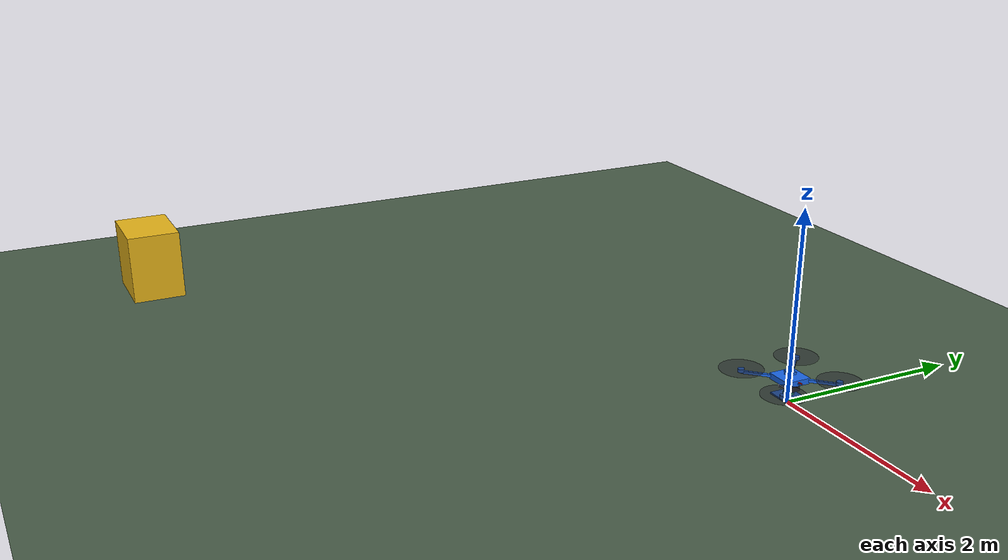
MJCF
<mujoco model="tar_step0_empty">
  <compiler angle="radian" autolimits="true" inertiafromgeom="true" />
  <option timestep="0.002" gravity="0 0 -9.81" integrator="RK4" />
  <statistic center="0 0 2" extent="15" />
  <visual>
    <global offwidth="1280" offheight="960" />
    <headlight ambient="0.4 0.4 0.4" />
  </visual>
  <asset>
    <texture name="sky" type="skybox" builtin="gradient" rgb1="0.35 0.55 0.8" rgb2="0.85 0.9 0.95" width="512" height="512" />
    <texture name="grid" type="2d" builtin="checker" rgb1="0.24 0.32 0.24" rgb2="0.32 0.4 0.32" width="256" height="256" />
    <material name="ground" texture="grid" texrepeat="30 30" />
  </asset>
  <worldbody>
    <light pos="0 0 15" dir="-0.2 -0.3 -1" directional="true" />
    <geom name="floor" type="plane" size="30 30 0.1" material="ground" friction="0.8 0.01 0.001" />
    <geom name="ground_station" type="box" pos="-6 -5 0.4" size="0.4 0.3 0.4" rgba="0.9 0.7 0.1 1" />
    <body name="mapper_0" pos="0 0 0.23" quat="1 0 0 0">
      <freejoint name="mapper_0_free" />
      <geom name="mapper_0_center_frame" type="box" pos="-0.000612724757953 6.36237897649e-05 0.0286266943292" size="0.14 0.14 0.03" quat="1 0 0 0" mass="0.28" rgba="0.1 0.4 0.9 1" group="0" contype="1" conaffinity="1" />
      <geom name="mapper_0_landing_gear" type="box" pos="-0.000612724757953 6.36237897649e-05 -0.161373305671" size="0.13 0.12 0.0075" quat="1 0 0 0" mass="0.08" rgba="0.1 0.4 0.9 1" group="0" contype="1" conaffinity="1" />
      <geom name="mapper_0_battery_12s" type="box" pos="-0.000612724757953 6.36237897649e-05 -0.0363733056708" size="0.09 0.06 0.05" quat="1 0 0 0" mass="1.45" rgba="0.12 0.12 0.15 1" group="0" contype="1" conaffinity="1" />
      <geom name="mapper_0_jetson_carrier_allowance" type="box" pos="-0.000612724757953 6.36237897649e-05 0.0936266943292" size="0.05 0.04 0.0125" quat="1 0 0 0" mass="0.2" rgba="0.1 0.4 0.9 1" group="0" contype="1" conaffinity="1" />
      <geom name="mapper_0_cube_carrier" type="box" pos="-0.000612724757953 6.36237897649e-05 0.128626694329" size="0.0275 0.0275 0.02" quat="1 0 0 0" mass="0.073" rgba="0.1 0.4 0.9 1" group="0" contype="0" conaffinity="0" />
      <geom name="mapper_0_unitree_l2" type="box" pos="-0.000612724757953 6.36237897649e-05 -0.111373305671" size="0.0375 0.0375 0.035" quat="1 0 0 0" mass="0.23" rgba="0.15 0.8 0.7 1" group="0" contype="1" conaffinity="1" />
      <geom name="mapper_0_tf_luna" type="box" pos="0.149387275242 6.36237897649e-05 0.0286266943292" size="0.0175 0.0105 0.0065" quat="1 0 0 0" mass="0.005" rgba="0.1 0.4 0.9 1" group="0" contype="1" conaffinity="1" />
      <geom name="mapper_0_thermal_core" type="box" pos="0.069387275242 6.36237897649e-05 -0.101373305671" size="0.005 0.005 0.004" quat="1 0 0 0" mass="0.001" rgba="0.1 0.4 0.9 1" group="3" contype="0" conaffinity="0" />
      <geom name="mapper_0_thermal_breakout" type="box" pos="0.069387275242 6.36237897649e-05 -0.0913733056708" size="0.0125 0.0125 0.0025" quat="1 0 0 0" mass="0.008" rgba="0.1 0.4 0.9 1" group="0" contype="1" conaffinity="1" />
      <geom name="mapper_0_gnss_chip" type="box" pos="-0.000612724757953 0.0400636237898 0.118626694329" size="0.005 0.005 0.001" quat="1 0 0 0" mass="0.0005" rgba="0.1 0.4 0.9 1" group="3" contype="0" conaffinity="0" />
      <geom name="mapper_0_gnss_antenna_allowance" type="box" pos="-0.000612724757953 6.36237897649e-05 0.163626694329" size="0.015 0.015 0.0035" quat="1 0 0 0" mass="0.015" rgba="0.1 0.4 0.9 1" group="0" contype="1" conaffinity="1" />
      <geom name="mapper_0_vocore_antenna_assembly" type="box" pos="-0.000612724757953 -0.0499363762102 0.0836266943292" size="0.0128 0.0128 0.0015" quat="1 0 0 0" mass="0.005" rgba="0.1 0.4 0.9 1" group="0" contype="1" conaffinity="1" />
      <geom name="mapper_0_rc_receiver" type="box" pos="-0.050612724758 6.36237897649e-05 0.0736266943292" size="0.008 0.0055 0.0015" quat="1 0 0 0" mass="0.0015" rgba="0.1 0.4 0.9 1" group="3" contype="0" conaffinity="0" />
      <geom name="mapper_0_escs_aggregate" type="box" pos="-0.000612724757953 6.36237897649e-05 0.0636266943292" size="0.06 0.06 0.004" quat="1 0 0 0" mass="0.092" rgba="0.1 0.4 0.9 1" group="3" contype="0" conaffinity="0" />
      <geom name="mapper_0_pdb" type="box" pos="-0.000612724757953 6.36237897649e-05 0.0706266943292" size="0.025 0.025 0.004" quat="1 0 0 0" mass="0.021" rgba="0.1 0.4 0.9 1" group="3" contype="0" conaffinity="0" />
      <geom name="mapper_0_bec" type="box" pos="-0.070612724758 6.36237897649e-05 0.0686266943292" size="0.0175 0.01 0.004" quat="1 0 0 0" mass="0.007" rgba="0.1 0.4 0.9 1" group="3" contype="0" conaffinity="0" />
      <geom name="mapper_0_pm02" type="box" pos="0.069387275242 6.36237897649e-05 0.0686266943292" size="0.02 0.0125 0.004" quat="1 0 0 0" mass="0.02" rgba="0.1 0.4 0.9 1" group="3" contype="0" conaffinity="0" />
      <geom name="mapper_0_harness_allowance" type="box" pos="-0.000612724757953 6.36237897649e-05 0.0286266943292" size="0.1 0.1 0.015" quat="1 0 0 0" mass="0.11" rgba="0.1 0.4 0.9 1" group="3" contype="0" conaffinity="0" />
      <geom name="mapper_0_sensor_plate" type="box" pos="-0.000612724757953 6.36237897649e-05 -0.0763733056708" size="0.06 0.06 0.0025" quat="1 0 0 0" mass="0.03" rgba="0.1 0.4 0.9 1" group="3" contype="0" conaffinity="0" />
      <geom name="mapper_0_custom_carrier" type="box" pos="-0.000612724757953 6.36237897649e-05 0.0786266943292" size="0.03 0.03 0.0025" quat="1 0 0 0" mass="0.02" rgba="0.1 0.4 0.9 1" group="3" contype="0" conaffinity="0" />
      <geom name="mapper_0_arm_0" type="box" pos="0.169092902727 0.169769251275 0.0286266943292" size="0.24 0.014 0.014" quat="0.923879532511 0 0 0.382683432365" mass="0.08" rgba="0.1 0.4 0.9 1" group="0" contype="1" conaffinity="1" />
      <geom name="mapper_0_motor_0" type="cylinder" pos="0.338798530212 0.339474878759 0.0461266943292" size="0.035 0.0175" quat="1 0 0 0" mass="0.13" rgba="0.1 0.4 0.9 1" group="0" contype="1" conaffinity="1" />
      <geom name="mapper_0_propeller_0" type="cylinder" pos="0.338798530212 0.339474878759 0.0636266943292" size="0.2286 0.001" quat="1 0 0 0" mass="0.0315" rgba="0.15 0.15 0.18 0.5" group="0" contype="1" conaffinity="1" />
      <geom name="mapper_0_arm_1" type="box" pos="-0.170318352243 0.169769251275 0.0286266943292" size="0.24 0.014 0.014" quat="0.382683432365 0 0 0.923879532511" mass="0.08" rgba="0.1 0.4 0.9 1" group="0" contype="1" conaffinity="1" />
      <geom name="mapper_0_motor_1" type="cylinder" pos="-0.340023979727 0.339474878759 0.0461266943292" size="0.035 0.0175" quat="1 0 0 0" mass="0.13" rgba="0.1 0.4 0.9 1" group="0" contype="1" conaffinity="1" />
      <geom name="mapper_0_propeller_1" type="cylinder" pos="-0.340023979727 0.339474878759 0.0636266943292" size="0.2286 0.001" quat="1 0 0 0" mass="0.0315" rgba="0.15 0.15 0.18 0.5" group="0" contype="1" conaffinity="1" />
      <geom name="mapper_0_arm_2" type="box" pos="-0.170318352243 -0.169642003695 0.0286266943292" size="0.24 0.014 0.014" quat="0.382683432365 0 0 -0.923879532511" mass="0.08" rgba="0.1 0.4 0.9 1" group="0" contype="1" conaffinity="1" />
      <geom name="mapper_0_motor_2" type="cylinder" pos="-0.340023979727 -0.33934763118 0.0461266943292" size="0.035 0.0175" quat="1 0 0 0" mass="0.13" rgba="0.1 0.4 0.9 1" group="0" contype="1" conaffinity="1" />
      <geom name="mapper_0_propeller_2" type="cylinder" pos="-0.340023979727 -0.33934763118 0.0636266943292" size="0.2286 0.001" quat="1 0 0 0" mass="0.0315" rgba="0.15 0.15 0.18 0.5" group="0" contype="1" conaffinity="1" />
      <geom name="mapper_0_arm_3" type="box" pos="0.169092902727 -0.169642003695 0.0286266943292" size="0.24 0.014 0.014" quat="0.923879532511 0 0 -0.382683432365" mass="0.08" rgba="0.1 0.4 0.9 1" group="0" contype="1" conaffinity="1" />
      <geom name="mapper_0_motor_3" type="cylinder" pos="0.338798530212 -0.33934763118 0.0461266943292" size="0.035 0.0175" quat="1 0 0 0" mass="0.13" rgba="0.1 0.4 0.9 1" group="0" contype="1" conaffinity="1" />
      <geom name="mapper_0_propeller_3" type="cylinder" pos="0.338798530212 -0.33934763118 0.0636266943292" size="0.2286 0.001" quat="1 0 0 0" mass="0.0315" rgba="0.15 0.15 0.18 0.5" group="0" contype="1" conaffinity="1" />
      <site name="mapper_0_rotor_0" pos="0.338798530212 0.339474878759 0.0636266943292" size="0.006" rgba="0 0 0 0" />
      <site name="mapper_0_rotor_1" pos="-0.340023979727 0.339474878759 0.0636266943292" size="0.006" rgba="0 0 0 0" />
      <site name="mapper_0_rotor_2" pos="-0.340023979727 -0.33934763118 0.0636266943292" size="0.006" rgba="0 0 0 0" />
      <site name="mapper_0_rotor_3" pos="0.338798530212 -0.33934763118 0.0636266943292" size="0.006" rgba="0 0 0 0" />
      <site name="mapper_0_heading" type="box" pos="0.12 0 0.04" size="0.072 0.005 0.005" rgba="1 0.1 0.1 1" />
      <site name="mapper_0_lidar_down" pos="-0.000612724757953 6.36237897649e-05 -0.111373305671" zaxis="0 0 -1" size="0.01" rgba="0 1 1 1" />
    </body>
  </worldbody>
  <actuator>
    <motor name="mapper_0_motor_0" site="mapper_0_rotor_0" gear="0 0 1 0 0 0.025" ctrllimited="true" ctrlrange="0 22.0" forcelimited="true" forcerange="0 22.0" />
    <motor name="mapper_0_motor_1" site="mapper_0_rotor_1" gear="0 0 1 0 0 -0.025" ctrllimited="true" ctrlrange="0 22.0" forcelimited="true" forcerange="0 22.0" />
    <motor name="mapper_0_motor_2" site="mapper_0_rotor_2" gear="0 0 1 0 0 0.025" ctrllimited="true" ctrlrange="0 22.0" forcelimited="true" forcerange="0 22.0" />
    <motor name="mapper_0_motor_3" site="mapper_0_rotor_3" gear="0 0 1 0 0 -0.025" ctrllimited="true" ctrlrange="0 22.0" forcelimited="true" forcerange="0 22.0" />
  </actuator>
</mujoco>
